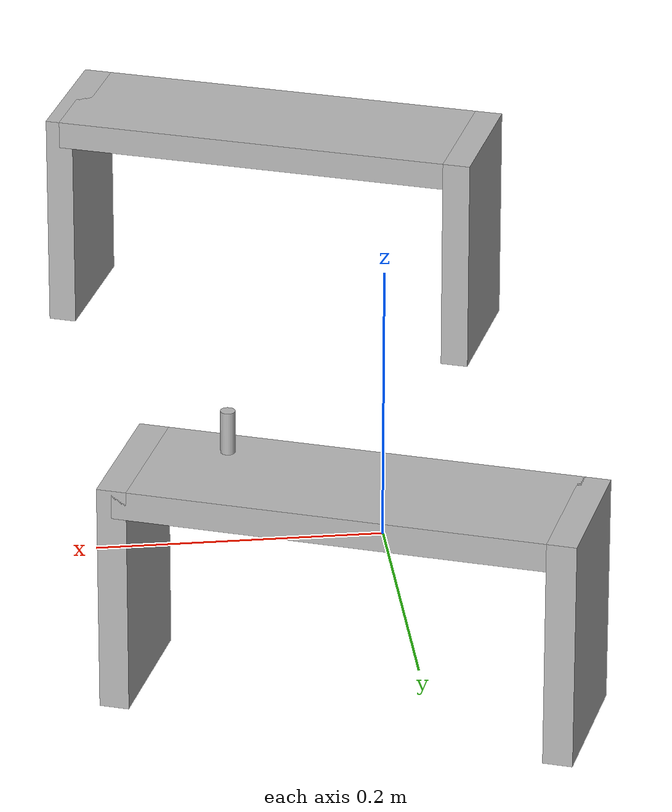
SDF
<?xml version="1.0"?>
<sdf version="1.7">

  <model name="workstation">
    <static>true</static>

    <!-- FRAME DI RIFERIMENTO DELLA POSTAZIONE -->
    <!-- Usalo come table_frame in TF -->
    <pose>0 0 0 0 0 0</pose>

    <!-- ================= TABLE 1 ================= -->
    <link name="table_1_link">
      <pose>0.03 0.19 0 0 0 1.2</pose>

      <collision name="collision">
        <pose>0.05 0 0.08 0 0 0</pose>
        <geometry>
          <box>
            <size>0.1 0.3 0.16</size>
          </box>
        </geometry>
      </collision>

      <visual name="top">
        <pose>0.05 0 0.15 0 0 0</pose>
        <geometry>
          <box>
            <size>0.1 0.3 0.02</size>
          </box>
        </geometry>
      </visual>

      <visual name="leg_left">
        <pose>0.05 -0.15 0.08 0 0 0</pose>
        <geometry>
          <box>
            <size>0.1 0.02 0.16</size>
          </box>
        </geometry>
      </visual>

      <visual name="leg_right">
        <pose>0.05 0.15 0.08 0 0 0</pose>
        <geometry>
          <box>
            <size>0.1 0.02 0.16</size>
          </box>
        </geometry>
      </visual>
    </link>

    <!-- ================= TABLE 2 ================= -->
    <link name="table_2_link">
      <pose>0.02 -0.41 0 0 0 1.2</pose>

      <collision name="collision">
        <pose>0.05 0 0.08 0 0 0</pose>
        <geometry>
          <box>
            <size>0.1 0.3 0.16</size>
          </box>
        </geometry>
      </collision>

      <visual name="top">
        <pose>0.05 0 0.15 0 0 0</pose>
        <geometry>
          <box>
            <size>0.1 0.3 0.02</size>
          </box>
        </geometry>
      </visual>

      <visual name="leg_left">
        <pose>0.05 -0.15 0.08 0 0 0</pose>
        <geometry>
          <box>
            <size>0.1 0.02 0.16</size>
          </box>
        </geometry>
      </visual>

      <visual name="leg_right">
        <pose>0.05 0.15 0.08 0 0 0</pose>
        <geometry>
          <box>
            <size>0.1 0.02 0.16</size>
          </box>
        </geometry>
      </visual>
    </link>

    <!-- ================= PICKABLE OBJECT ================= -->
    <link name="pickable_object_link">
      <pose>0.125 0.18 0.15 0 0 0</pose>

      <inertial>
        <mass>0.05</mass>
        <inertia>
          <ixx>1e-5</ixx>
          <iyy>1e-5</iyy>
          <izz>1e-5</izz>
        </inertia>
      </inertial>

      <collision name="collision">
        <geometry>
          <cylinder>
            <radius>0.005</radius>
            <length>0.08</length>
          </cylinder>
        </geometry>
      </collision>

      <visual name="visual">
        <geometry>
          <cylinder>
            <radius>0.005</radius>
            <length>0.08</length>
          </cylinder>
        </geometry>
      </visual>
    </link>

  </model>

</sdf>
